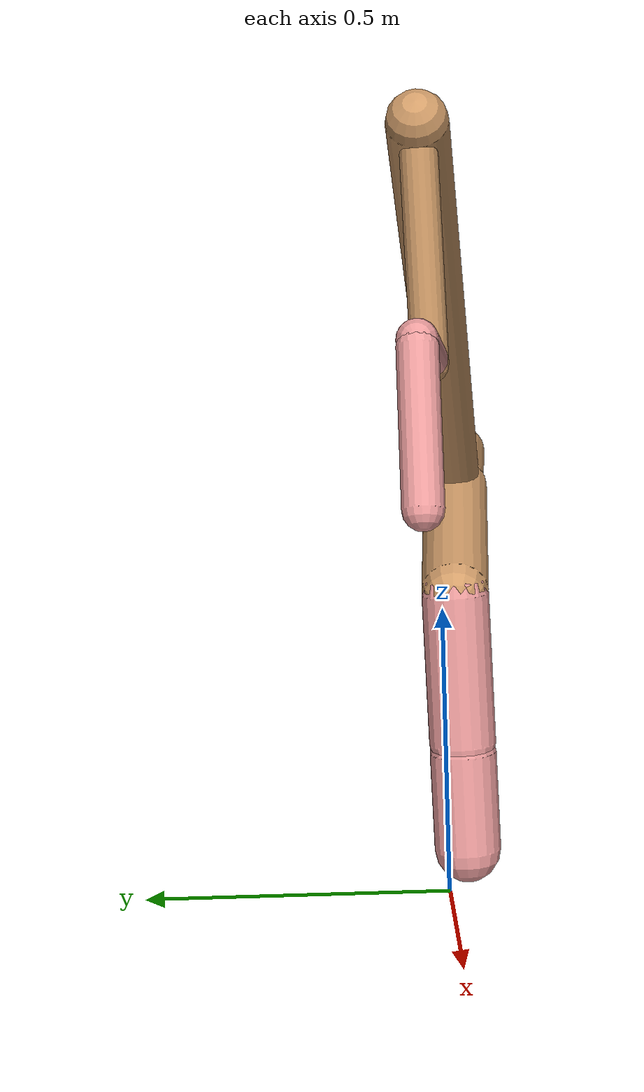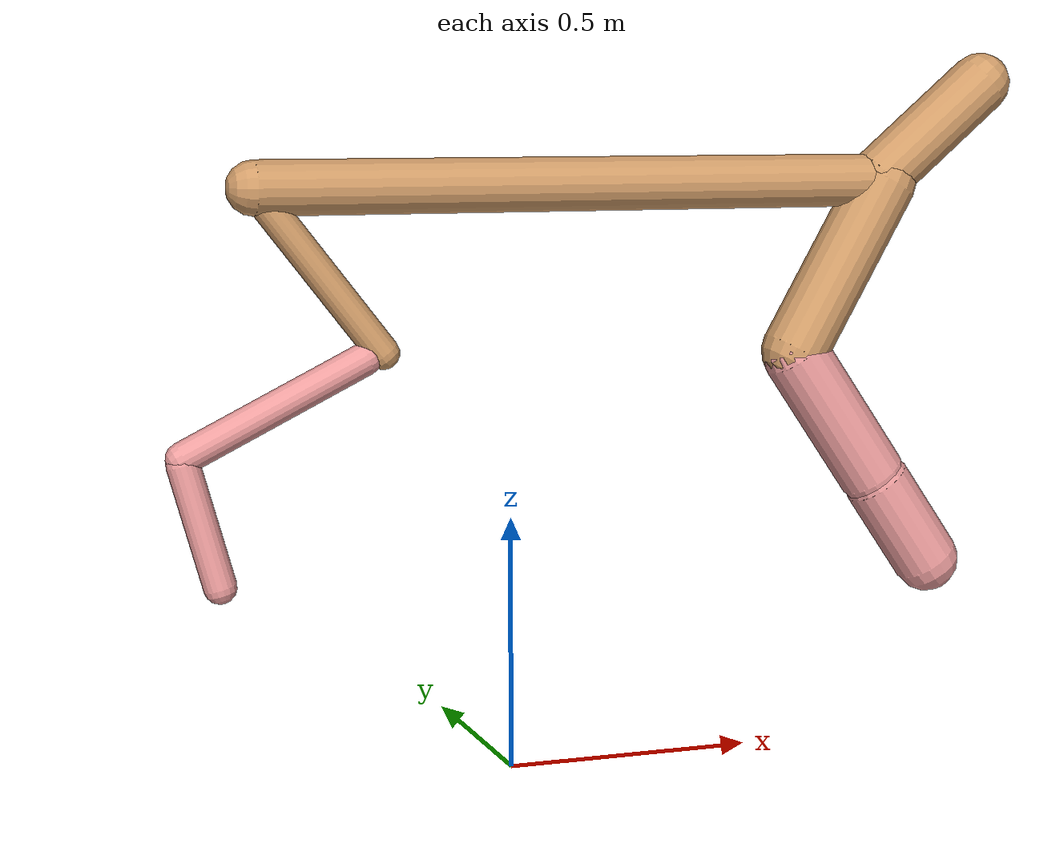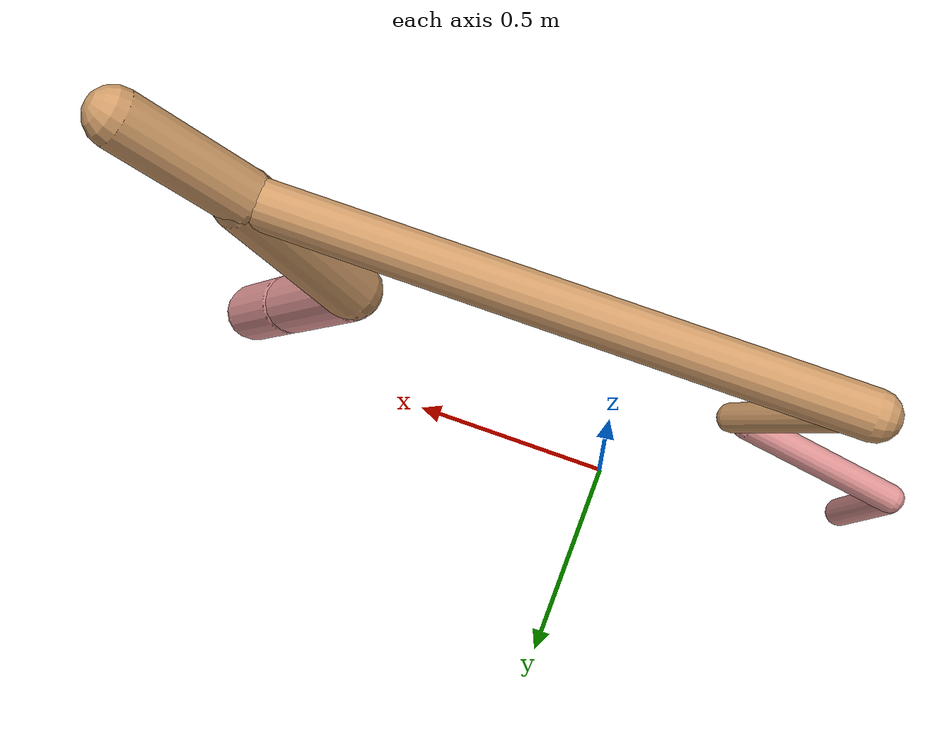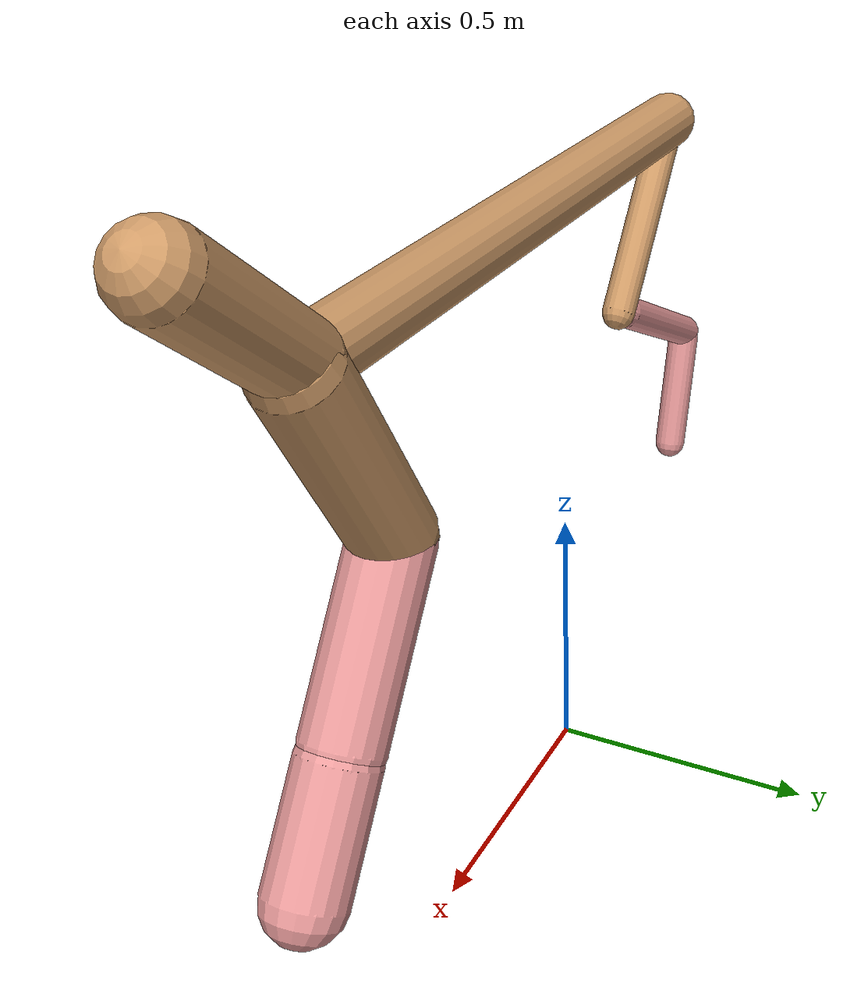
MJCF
<mujoco model="cheetah">
  <compiler angle="radian" coordinate="local" inertiafromgeom="true" settotalmass="14" />
  <default>
    <joint armature=".1" damping=".01" limited="true" solimplimit="0 .8 .03" solreflimit=".02 1" stiffness="8" />
    <geom conaffinity="0" condim="3" contype="1" friction="0.8 .1 .1" rgba="0.8 0.6 .4 1" solimp="0.0 0.8 0.01" solref="0.02 1" />
    <motor ctrllimited="true" ctrlrange="-1 1" />
  </default>
  <size nstack="300000" nuser_geom="1" />
  <option gravity="0 0 -9.81" timestep="0.01" />
  <worldbody>
    <body name="torso" pos="0.0 0.0 1.154705298191803">
      <joint armature="0" axis="1 0 0" damping="0" limited="false" name="ignorex" pos="0 0 0" stiffness="0" type="slide" />
      <joint armature="0" axis="0 0 1" damping="0" limited="false" name="ignorez" pos="0 0 0" stiffness="0" type="slide" />
      <joint armature="0" axis="0 1 0" damping="0" limited="false" name="ignorey" pos="0 0 0" stiffness="0" type="hinge" />
      <geom fromto="-0.5 0.0 0.0 0.8075335811773487 0.0 0.0" name="torso" size="0.05307552909506224" type="capsule" />
      <geom axisangle="0 1 0 .87" name="head" pos="0.9075335811773487 0.0 0.1" size="0.06202801432450245 0.15" type="capsule" />

      <body name="bthigh" pos="-.5 0 0">
        <joint axis="0 1 0" damping="6" name="bthigh" pos="0 0 0" range="-.52 1.05" stiffness="240" type="hinge" />
        <geom axisangle="0 1 0 -3.8" name="bthigh" pos="0.1283041045366693 0.0 -0.16679533589767007" size="0.0322 0.19142218303187677" type="capsule" />
        <body name="bshin" pos="0.21660820907333855 0.0 -0.3235906717953401">
          <joint axis="0 1 0" damping="4.5" name="bshin" pos="0 0 0" range="-.785 .785" stiffness="180" type="hinge" />
          <geom axisangle="0 1 0 -2.03" name="bshin" pos="-0.18295303045098504 0.0 -0.09147651522549252" rgba="0.9 0.6 0.6 1" size="0.0322 0.19802294796401046" type="capsule" />
          <body name="bfoot" pos="-0.3659060609019701 0.0 -0.18295303045098504">
            <joint axis="0 1 0" damping="3" name="bfoot" pos="0 0 0" range="-.4 .785" stiffness="120" type="hinge" />
            <geom axisangle="0 1 0 -.27" name="bfoot" pos="0.03889197833406495 0.0 -0.12575072994681" rgba="0.9 0.6 0.6 1" size="0.0322 0.12409438072411323" type="capsule" />
            <inertial mass="10" />
          </body>
        </body>
      </body>
      <body name="fthigh" pos="0.8075335811773487 0.0 0.0">
        <joint axis="0 1 0" damping="4.5" name="fthigh" pos="0 0 0" range="-1.5 0.8" stiffness="180" type="hinge" />
        <geom axisangle="0 1 0 .52" name="fthigh" pos="-0.10187448296357901 0.0 -0.17464197079470684" size="0.06826660359608021 0.1962592098948847" type="capsule" />
        <body name="fshin" pos="-0.20374896592715802 0.0 -0.34928394158941367">
          <joint axis="0 1 0" damping="3" name="fshin" pos="0 0 0" range="-1.2 1.1" stiffness="120" type="hinge" />
          <geom axisangle="0 1 0 -.6" name="fshin" pos="0.09451874438145814 0.0 -0.13087210760509588" rgba="0.9 0.6 0.6 1" size="0.06826660359608021 0.15641711465306601" type="capsule" />
          <body name="ffoot" pos="0.1890374887629163 0.0 -0.26174421521019176">
            <joint axis="0 1 0" damping="1.5" name="ffoot" pos="0 0 0" range="-3.1 -0.3" stiffness="60" type="hinge" />
            <geom axisangle="0 1 0 -.6" name="ffoot" pos="0.06300415682692258 0.0 -0.09800646617521291" rgba="0.9 0.6 0.6 1" size="0.06826660359608021 0.10329432099730776" type="capsule" />
            <inertial mass="10" />
          </body>
        </body>
      </body>
    </body>
  </worldbody>
  <actuator>
    <motor gear="120" joint="bthigh" name="bthigh" />
    <motor gear="90" joint="bshin" name="bshin" />
    <motor gear="60" joint="bfoot" name="bfoot" />
    <motor gear="120" joint="fthigh" name="fthigh" />
    <motor gear="60" joint="fshin" name="fshin" />
    <motor gear="30" joint="ffoot" name="ffoot" />
  </actuator>
</mujoco>
